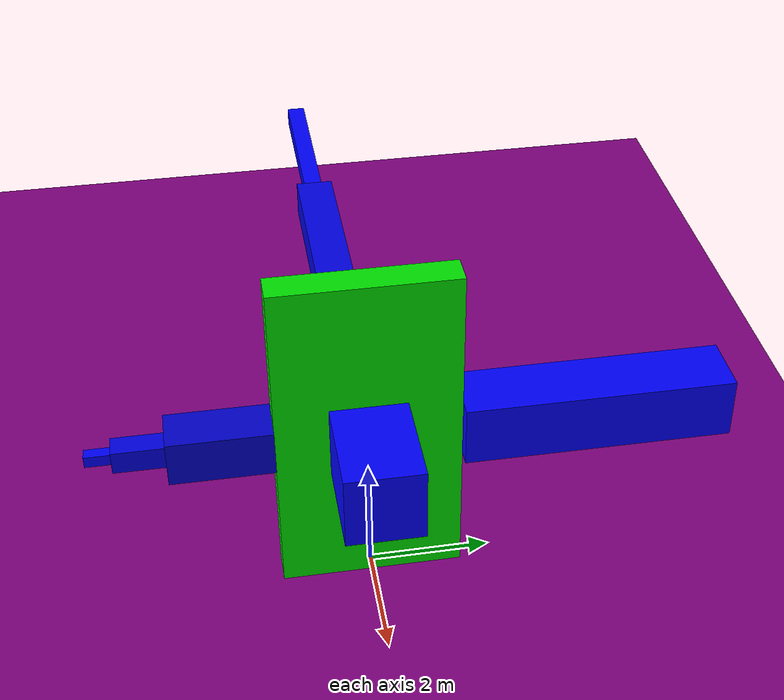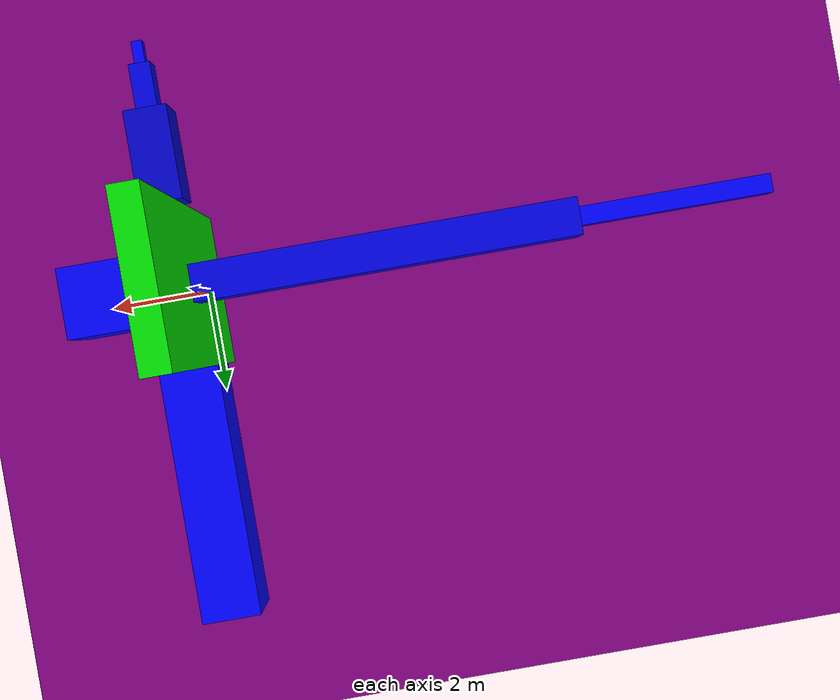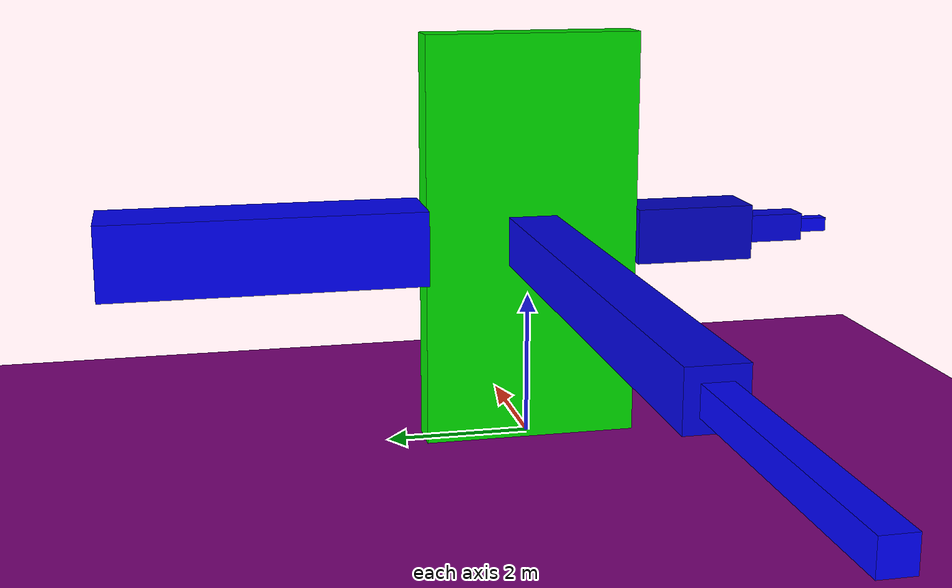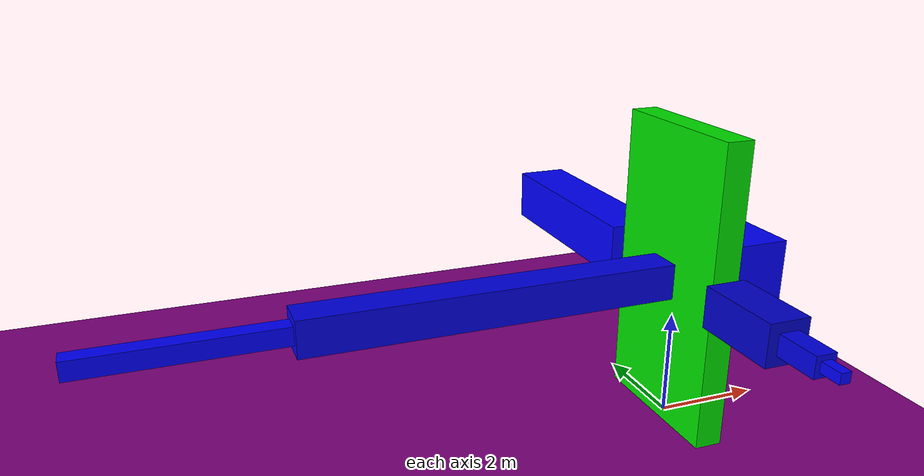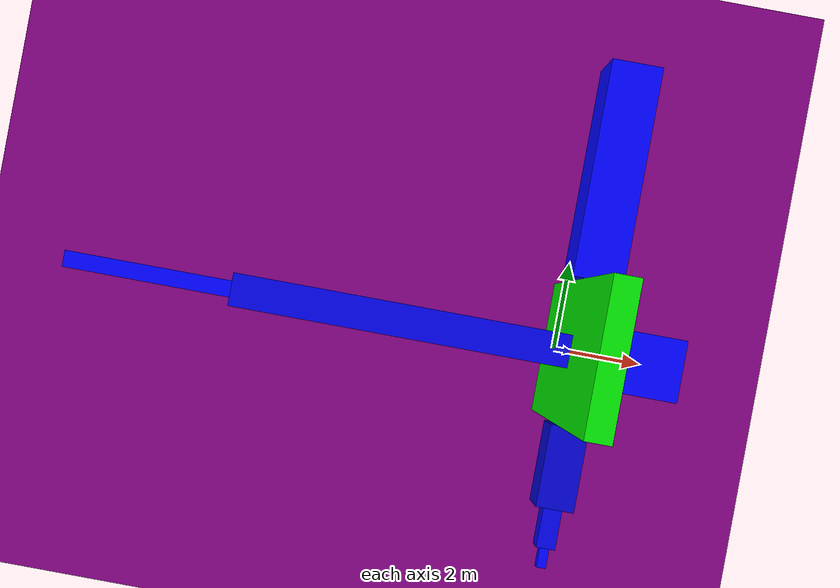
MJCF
<mujoco model="unnamed_model">
  <option timestep="0.01" integrator="RK4">
    <flag energy="enable" sensornoise="enable"/>
  </option>
  <default>
    <default class="/"/>
  </default>
  <worldbody>
    <light name="world_light" class="/" pos="0 0 10" dir="0 0 -1" diffuse="0.5 0.5 0.5"/>
    <geom name="ground_plane" class="/" type="plane" size="0 0 1" rgba="0.5 0 0.5 1"/>
    <body name="core_body" pos="0 0 2.8428504504822163">
      <geom name="core_geom" class="/" type="box" size="0.25829909574436705 1.4896065863561607 2.8428504504822163" rgba="0 0.90000000000000002 0 1"/>
      <joint name="first" class="/" type="free"/>
      <body name="front_limb_1" pos="0 -2.3244574636884394 0">
        <joint name="front_shoulder_1" class="/" type="ball" pos="0 0.8348508773322787 0"/>
        <geom name="front_arm_1" class="/" type="box" size="0.38530354521524279 0.8348508773322787 0.38530354521524279" rgba="0 0 0.80000000000000004 1" mass="1"/>
        <body name="front_limb_2" pos="0 -1.252276315998418 0">
          <joint name="front_shoulder_2" class="/" type="ball" pos="0 0.41742543866613935 0"/>
          <geom name="front_arm_2" class="/" type="box" size="0.1926517726076214 0.41742543866613935 0.1926517726076214" rgba="0 0 0.90000000000000002 1" mass="1"/>
          <body name="front_limb_3" pos="0 -0.62613815799920902 0">
            <joint name="front_shoulder_3" class="/" type="ball" pos="0 0.20871271933306967 0"/>
            <geom name="front_arm_3" class="/" type="box" size="0.096325886303810698 0.20871271933306967 0.096325886303810698" rgba="0 0 1 1" mass="1"/>
          </body>
        </body>
      </body>
      <body name="right_limb_4" pos="1.0966559147398907 0 0">
        <joint name="right_shoulder_4" class="/" type="ball" pos="-0.8383568189955235 0 0"/>
        <geom name="right_arm_4" class="/" type="box" size="0.8383568189955235 0.62551083531087848 0.62551083531087848" rgba="0 0 1 1" mass="1"/>
      </body>
      <body name="left_limb_5" pos="-3.7139440937356971 0 0">
        <joint name="left_shoulder_5" class="/" type="ball" pos="3.45564499799133 0 0"/>
        <geom name="left_arm_5" class="/" type="box" size="3.45564499799133 0.33674381982028678 0.33674381982028678" rgba="0 0 0.90000000000000002 1" mass="1"/>
        <body name="left_limb_6" pos="-5.1834674969869949 0 0">
          <joint name="left_shoulder_6" class="/" type="ball" pos="1.727822498995665 0 0"/>
          <geom name="left_arm_6" class="/" type="box" size="1.727822498995665 0.16837190991014339 0.16837190991014339" rgba="0 0 1 1" mass="1"/>
        </body>
      </body>
      <body name="back_limb_7" pos="0 3.6783064467648949 0">
        <joint name="back_shoulder_7" class="/" type="ball" pos="0 -2.1886998604087342 0"/>
        <geom name="back_arm_7" class="/" type="box" size="0.5148626766369333 2.1886998604087342 0.5148626766369333" rgba="0 0 1 1" mass="1"/>
      </body>
    </body>
  </worldbody>
  <actuator>
    <position name="frontxy_2" class="/" group="0" gear="0 0 1" joint="front_shoulder_1" kp="5"/>
    <position name="frontxz_2" class="/" group="0" gear="0 1 0" joint="front_shoulder_1" kp="5"/>
    <position name="frontyz_2" class="/" group="0" gear="1 0 0" joint="front_shoulder_1" kp="5"/>
    <position name="frontxy_1" class="/" group="0" gear="0 0 1" joint="front_shoulder_2" kp="5"/>
    <position name="frontxz_1" class="/" group="0" gear="0 1 0" joint="front_shoulder_2" kp="5"/>
    <position name="frontyz_1" class="/" group="0" gear="1 0 0" joint="front_shoulder_2" kp="5"/>
    <position name="frontxy_0" class="/" group="0" gear="0 0 1" joint="front_shoulder_3" kp="5"/>
    <position name="frontxz_0" class="/" group="0" gear="0 1 0" joint="front_shoulder_3" kp="5"/>
    <position name="frontyz_0" class="/" group="0" gear="1 0 0" joint="front_shoulder_3" kp="5"/>
    <position name="rightxy_0" class="/" group="1" gear="0 0 1" joint="right_shoulder_4" kp="5"/>
    <position name="rightxz_0" class="/" group="1" gear="0 1 0" joint="right_shoulder_4" kp="5"/>
    <position name="rightyz_0" class="/" group="1" gear="1 0 0" joint="right_shoulder_4" kp="5"/>
    <position name="leftxy_1" class="/" group="3" gear="0 0 1" joint="left_shoulder_5" kp="5"/>
    <position name="leftxz_1" class="/" group="3" gear="0 1 0" joint="left_shoulder_5" kp="5"/>
    <position name="leftyz_1" class="/" group="3" gear="1 0 0" joint="left_shoulder_5" kp="5"/>
    <position name="leftxy_0" class="/" group="3" gear="0 0 1" joint="left_shoulder_6" kp="5"/>
    <position name="leftxz_0" class="/" group="3" gear="0 1 0" joint="left_shoulder_6" kp="5"/>
    <position name="leftyz_0" class="/" group="3" gear="1 0 0" joint="left_shoulder_6" kp="5"/>
    <position name="backxy_0" class="/" group="2" gear="0 0 1" joint="back_shoulder_7" kp="5"/>
    <position name="backxz_0" class="/" group="2" gear="0 1 0" joint="back_shoulder_7" kp="5"/>
    <position name="backyz_0" class="/" group="2" gear="1 0 0" joint="back_shoulder_7" kp="5"/>
  </actuator>
</mujoco>
